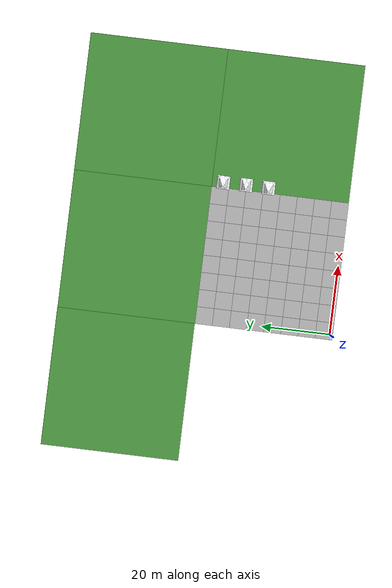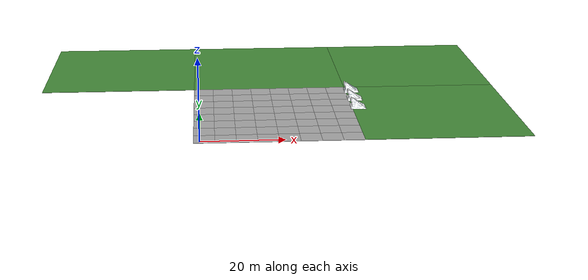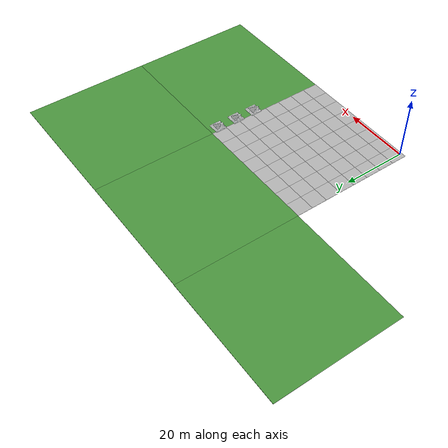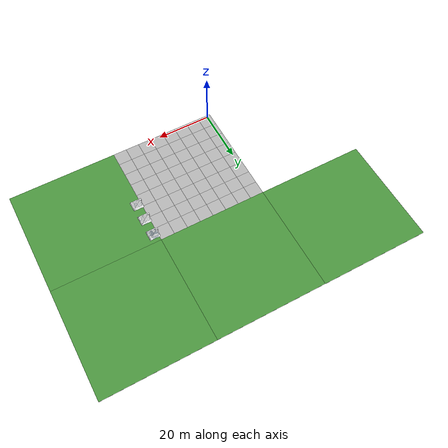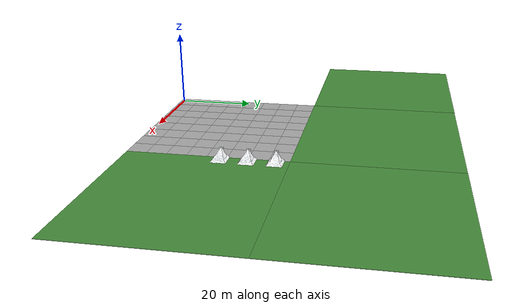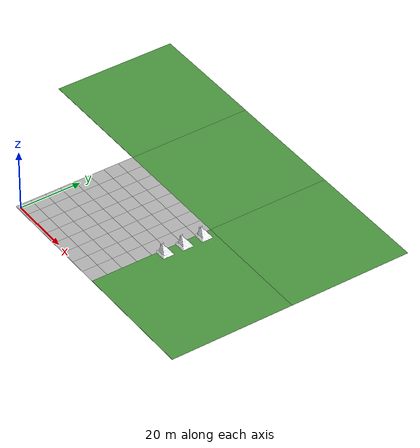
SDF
<sdf version="1.7">
 <world name="default">
  <model name="mud_plane_40x40">
   <model name="mud_plane_20x20">
    <model name="mud_plane">
     <static>1</static>
     <link name="link">
      <collision name="collision"><geometry><box><size>10 10 0.1</size></box></geometry></collision>
      <visual name="visual_1">
       <pose>-2.5 2.5 -0.05 0 -0 0</pose>
       <cast_shadows>0</cast_shadows>
       <geometry><box><size>5 5 0.1</size></box></geometry>
       <material>
        <script>
         <uri>model://mud_plane/materials/scripts</uri>
         <uri>model://mud_plane/materials/textures</uri>
         <name>vrc/mud</name>
        </script>
       </material>
      </visual>
      <visual name="visual_2">
       <pose>2.5 2.5 -0.05 0 -0 0</pose>
       <cast_shadows>0</cast_shadows>
       <geometry><box><size>5 5 0.1</size></box></geometry>
       <material>
        <script>
         <uri>model://mud_plane/materials/scripts</uri>
         <uri>model://mud_plane/materials/textures</uri>
         <name>vrc/mud</name>
        </script>
       </material>
      </visual>
      <visual name="visual_3">
       <pose>2.5 -2.5 -0.05 0 -0 0</pose>
       <cast_shadows>0</cast_shadows>
       <geometry><box><size>5 5 0.1</size></box></geometry>
       <material>
        <script>
         <uri>model://mud_plane/materials/scripts</uri>
         <uri>model://mud_plane/materials/textures</uri>
         <name>vrc/mud</name>
        </script>
       </material>
      </visual>
      <visual name="visual_4">
       <pose>-2.5 -2.5 -0.05 0 -0 0</pose>
       <cast_shadows>0</cast_shadows>
       <geometry><box><size>5 5 0.1</size></box></geometry>
       <material>
        <script>
         <uri>model://mud_plane/materials/scripts</uri>
         <uri>model://mud_plane/materials/textures</uri>
         <name>vrc/mud</name>
        </script>
       </material>
      </visual>
     </link>
     <pose>-4.99986 -4.99991 0 0 -0 0</pose>
    </model>
    <model name="mud_plane_0">
     <static>1</static>
     <link name="link">
      <collision name="collision"><geometry><box><size>10 10 0.1</size></box></geometry></collision>
      <visual name="visual_1">
       <pose>-2.5 2.5 -0.05 0 -0 0</pose>
       <cast_shadows>0</cast_shadows>
       <geometry><box><size>5 5 0.1</size></box></geometry>
       <material>
        <script>
         <uri>model://mud_plane/materials/scripts</uri>
         <uri>model://mud_plane/materials/textures</uri>
         <name>vrc/mud</name>
        </script>
       </material>
      </visual>
      <visual name="visual_2">
       <pose>2.5 2.5 -0.05 0 -0 0</pose>
       <cast_shadows>0</cast_shadows>
       <geometry><box><size>5 5 0.1</size></box></geometry>
       <material>
        <script>
         <uri>model://mud_plane/materials/scripts</uri>
         <uri>model://mud_plane/materials/textures</uri>
         <name>vrc/mud</name>
        </script>
       </material>
      </visual>
      <visual name="visual_3">
       <pose>2.5 -2.5 -0.05 0 -0 0</pose>
       <cast_shadows>0</cast_shadows>
       <geometry><box><size>5 5 0.1</size></box></geometry>
       <material>
        <script>
         <uri>model://mud_plane/materials/scripts</uri>
         <uri>model://mud_plane/materials/textures</uri>
         <name>vrc/mud</name>
        </script>
       </material>
      </visual>
      <visual name="visual_4">
       <pose>-2.5 -2.5 -0.05 0 -0 0</pose>
       <cast_shadows>0</cast_shadows>
       <geometry><box><size>5 5 0.1</size></box></geometry>
       <material>
        <script>
         <uri>model://mud_plane/materials/scripts</uri>
         <uri>model://mud_plane/materials/textures</uri>
         <name>vrc/mud</name>
        </script>
       </material>
      </visual>
     </link>
     <pose>-4.99946 4.99954 0 0 -0 0</pose>
    </model>
    <model name="mud_plane_1">
     <static>1</static>
     <link name="link">
      <collision name="collision"><geometry><box><size>10 10 0.1</size></box></geometry></collision>
      <visual name="visual_1">
       <pose>-2.5 2.5 -0.05 0 -0 0</pose>
       <cast_shadows>0</cast_shadows>
       <geometry><box><size>5 5 0.1</size></box></geometry>
       <material>
        <script>
         <uri>model://mud_plane/materials/scripts</uri>
         <uri>model://mud_plane/materials/textures</uri>
         <name>vrc/mud</name>
        </script>
       </material>
      </visual>
      <visual name="visual_2">
       <pose>2.5 2.5 -0.05 0 -0 0</pose>
       <cast_shadows>0</cast_shadows>
       <geometry><box><size>5 5 0.1</size></box></geometry>
       <material>
        <script>
         <uri>model://mud_plane/materials/scripts</uri>
         <uri>model://mud_plane/materials/textures</uri>
         <name>vrc/mud</name>
        </script>
       </material>
      </visual>
      <visual name="visual_3">
       <pose>2.5 -2.5 -0.05 0 -0 0</pose>
       <cast_shadows>0</cast_shadows>
       <geometry><box><size>5 5 0.1</size></box></geometry>
       <material>
        <script>
         <uri>model://mud_plane/materials/scripts</uri>
         <uri>model://mud_plane/materials/textures</uri>
         <name>vrc/mud</name>
        </script>
       </material>
      </visual>
      <visual name="visual_4">
       <pose>-2.5 -2.5 -0.05 0 -0 0</pose>
       <cast_shadows>0</cast_shadows>
       <geometry><box><size>5 5 0.1</size></box></geometry>
       <material>
        <script>
         <uri>model://mud_plane/materials/scripts</uri>
         <uri>model://mud_plane/materials/textures</uri>
         <name>vrc/mud</name>
        </script>
       </material>
      </visual>
     </link>
     <pose>4.99964 -4.99949 0 0 -0 0</pose>
    </model>
    <model name="mud_plane_2">
     <static>1</static>
     <link name="link">
      <collision name="collision"><geometry><box><size>10 10 0.1</size></box></geometry></collision>
      <visual name="visual_1">
       <pose>-2.5 2.5 -0.05 0 -0 0</pose>
       <cast_shadows>0</cast_shadows>
       <geometry><box><size>5 5 0.1</size></box></geometry>
       <material>
        <script>
         <uri>model://mud_plane/materials/scripts</uri>
         <uri>model://mud_plane/materials/textures</uri>
         <name>vrc/mud</name>
        </script>
       </material>
      </visual>
      <visual name="visual_2">
       <pose>2.5 2.5 -0.05 0 -0 0</pose>
       <cast_shadows>0</cast_shadows>
       <geometry><box><size>5 5 0.1</size></box></geometry>
       <material>
        <script>
         <uri>model://mud_plane/materials/scripts</uri>
         <uri>model://mud_plane/materials/textures</uri>
         <name>vrc/mud</name>
        </script>
       </material>
      </visual>
      <visual name="visual_3">
       <pose>2.5 -2.5 -0.05 0 -0 0</pose>
       <cast_shadows>0</cast_shadows>
       <geometry><box><size>5 5 0.1</size></box></geometry>
       <material>
        <script>
         <uri>model://mud_plane/materials/scripts</uri>
         <uri>model://mud_plane/materials/textures</uri>
         <name>vrc/mud</name>
        </script>
       </material>
      </visual>
      <visual name="visual_4">
       <pose>-2.5 -2.5 -0.05 0 -0 0</pose>
       <cast_shadows>0</cast_shadows>
       <geometry><box><size>5 5 0.1</size></box></geometry>
       <material>
        <script>
         <uri>model://mud_plane/materials/scripts</uri>
         <uri>model://mud_plane/materials/textures</uri>
         <name>vrc/mud</name>
        </script>
       </material>
      </visual>
     </link>
     <pose>4.99967 4.99986 0 0 -0 0</pose>
    </model>
    <static>0</static>
    <pose>-9.99895 9.99843 0 0 -0 0</pose>
   </model>
   <model name="mud_plane_20x20_0">
    <model name="mud_plane">
     <static>1</static>
     <link name="link">
      <collision name="collision"><geometry><box><size>10 10 0.1</size></box></geometry></collision>
      <visual name="visual_1">
       <pose>-2.5 2.5 -0.05 0 -0 0</pose>
       <cast_shadows>0</cast_shadows>
       <geometry><box><size>5 5 0.1</size></box></geometry>
       <material>
        <script>
         <uri>model://mud_plane/materials/scripts</uri>
         <uri>model://mud_plane/materials/textures</uri>
         <name>vrc/mud</name>
        </script>
       </material>
      </visual>
      <visual name="visual_2">
       <pose>2.5 2.5 -0.05 0 -0 0</pose>
       <cast_shadows>0</cast_shadows>
       <geometry><box><size>5 5 0.1</size></box></geometry>
       <material>
        <script>
         <uri>model://mud_plane/materials/scripts</uri>
         <uri>model://mud_plane/materials/textures</uri>
         <name>vrc/mud</name>
        </script>
       </material>
      </visual>
      <visual name="visual_3">
       <pose>2.5 -2.5 -0.05 0 -0 0</pose>
       <cast_shadows>0</cast_shadows>
       <geometry><box><size>5 5 0.1</size></box></geometry>
       <material>
        <script>
         <uri>model://mud_plane/materials/scripts</uri>
         <uri>model://mud_plane/materials/textures</uri>
         <name>vrc/mud</name>
        </script>
       </material>
      </visual>
      <visual name="visual_4">
       <pose>-2.5 -2.5 -0.05 0 -0 0</pose>
       <cast_shadows>0</cast_shadows>
       <geometry><box><size>5 5 0.1</size></box></geometry>
       <material>
        <script>
         <uri>model://mud_plane/materials/scripts</uri>
         <uri>model://mud_plane/materials/textures</uri>
         <name>vrc/mud</name>
        </script>
       </material>
      </visual>
     </link>
     <pose>-4.99986 -4.99991 0 0 -0 0</pose>
    </model>
    <model name="mud_plane_0">
     <static>1</static>
     <link name="link">
      <collision name="collision"><geometry><box><size>10 10 0.1</size></box></geometry></collision>
      <visual name="visual_1">
       <pose>-2.5 2.5 -0.05 0 -0 0</pose>
       <cast_shadows>0</cast_shadows>
       <geometry><box><size>5 5 0.1</size></box></geometry>
       <material>
        <script>
         <uri>model://mud_plane/materials/scripts</uri>
         <uri>model://mud_plane/materials/textures</uri>
         <name>vrc/mud</name>
        </script>
       </material>
      </visual>
      <visual name="visual_2">
       <pose>2.5 2.5 -0.05 0 -0 0</pose>
       <cast_shadows>0</cast_shadows>
       <geometry><box><size>5 5 0.1</size></box></geometry>
       <material>
        <script>
         <uri>model://mud_plane/materials/scripts</uri>
         <uri>model://mud_plane/materials/textures</uri>
         <name>vrc/mud</name>
        </script>
       </material>
      </visual>
      <visual name="visual_3">
       <pose>2.5 -2.5 -0.05 0 -0 0</pose>
       <cast_shadows>0</cast_shadows>
       <geometry><box><size>5 5 0.1</size></box></geometry>
       <material>
        <script>
         <uri>model://mud_plane/materials/scripts</uri>
         <uri>model://mud_plane/materials/textures</uri>
         <name>vrc/mud</name>
        </script>
       </material>
      </visual>
      <visual name="visual_4">
       <pose>-2.5 -2.5 -0.05 0 -0 0</pose>
       <cast_shadows>0</cast_shadows>
       <geometry><box><size>5 5 0.1</size></box></geometry>
       <material>
        <script>
         <uri>model://mud_plane/materials/scripts</uri>
         <uri>model://mud_plane/materials/textures</uri>
         <name>vrc/mud</name>
        </script>
       </material>
      </visual>
     </link>
     <pose>-4.99946 4.99954 0 0 -0 0</pose>
    </model>
    <model name="mud_plane_1">
     <static>1</static>
     <link name="link">
      <collision name="collision"><geometry><box><size>10 10 0.1</size></box></geometry></collision>
      <visual name="visual_1">
       <pose>-2.5 2.5 -0.05 0 -0 0</pose>
       <cast_shadows>0</cast_shadows>
       <geometry><box><size>5 5 0.1</size></box></geometry>
       <material>
        <script>
         <uri>model://mud_plane/materials/scripts</uri>
         <uri>model://mud_plane/materials/textures</uri>
         <name>vrc/mud</name>
        </script>
       </material>
      </visual>
      <visual name="visual_2">
       <pose>2.5 2.5 -0.05 0 -0 0</pose>
       <cast_shadows>0</cast_shadows>
       <geometry><box><size>5 5 0.1</size></box></geometry>
       <material>
        <script>
         <uri>model://mud_plane/materials/scripts</uri>
         <uri>model://mud_plane/materials/textures</uri>
         <name>vrc/mud</name>
        </script>
       </material>
      </visual>
      <visual name="visual_3">
       <pose>2.5 -2.5 -0.05 0 -0 0</pose>
       <cast_shadows>0</cast_shadows>
       <geometry><box><size>5 5 0.1</size></box></geometry>
       <material>
        <script>
         <uri>model://mud_plane/materials/scripts</uri>
         <uri>model://mud_plane/materials/textures</uri>
         <name>vrc/mud</name>
        </script>
       </material>
      </visual>
      <visual name="visual_4">
       <pose>-2.5 -2.5 -0.05 0 -0 0</pose>
       <cast_shadows>0</cast_shadows>
       <geometry><box><size>5 5 0.1</size></box></geometry>
       <material>
        <script>
         <uri>model://mud_plane/materials/scripts</uri>
         <uri>model://mud_plane/materials/textures</uri>
         <name>vrc/mud</name>
        </script>
       </material>
      </visual>
     </link>
     <pose>4.99964 -4.99949 0 0 -0 0</pose>
    </model>
    <model name="mud_plane_2">
     <static>1</static>
     <link name="link">
      <collision name="collision"><geometry><box><size>10 10 0.1</size></box></geometry></collision>
      <visual name="visual_1">
       <pose>-2.5 2.5 -0.05 0 -0 0</pose>
       <cast_shadows>0</cast_shadows>
       <geometry><box><size>5 5 0.1</size></box></geometry>
       <material>
        <script>
         <uri>model://mud_plane/materials/scripts</uri>
         <uri>model://mud_plane/materials/textures</uri>
         <name>vrc/mud</name>
        </script>
       </material>
      </visual>
      <visual name="visual_2">
       <pose>2.5 2.5 -0.05 0 -0 0</pose>
       <cast_shadows>0</cast_shadows>
       <geometry><box><size>5 5 0.1</size></box></geometry>
       <material>
        <script>
         <uri>model://mud_plane/materials/scripts</uri>
         <uri>model://mud_plane/materials/textures</uri>
         <name>vrc/mud</name>
        </script>
       </material>
      </visual>
      <visual name="visual_3">
       <pose>2.5 -2.5 -0.05 0 -0 0</pose>
       <cast_shadows>0</cast_shadows>
       <geometry><box><size>5 5 0.1</size></box></geometry>
       <material>
        <script>
         <uri>model://mud_plane/materials/scripts</uri>
         <uri>model://mud_plane/materials/textures</uri>
         <name>vrc/mud</name>
        </script>
       </material>
      </visual>
      <visual name="visual_4">
       <pose>-2.5 -2.5 -0.05 0 -0 0</pose>
       <cast_shadows>0</cast_shadows>
       <geometry><box><size>5 5 0.1</size></box></geometry>
       <material>
        <script>
         <uri>model://mud_plane/materials/scripts</uri>
         <uri>model://mud_plane/materials/textures</uri>
         <name>vrc/mud</name>
        </script>
       </material>
      </visual>
     </link>
     <pose>4.99967 4.99986 0 0 -0 0</pose>
    </model>
    <static>0</static>
    <pose>9.99933 9.9997 0 0 -0 0</pose>
   </model>
   <model name="mud_plane_20x20_1">
    <model name="mud_plane">
     <static>1</static>
     <link name="link">
      <collision name="collision"><geometry><box><size>10 10 0.1</size></box></geometry></collision>
      <visual name="visual_1">
       <pose>-2.5 2.5 -0.05 0 -0 0</pose>
       <cast_shadows>0</cast_shadows>
       <geometry><box><size>5 5 0.1</size></box></geometry>
       <material>
        <script>
         <uri>model://mud_plane/materials/scripts</uri>
         <uri>model://mud_plane/materials/textures</uri>
         <name>vrc/mud</name>
        </script>
       </material>
      </visual>
      <visual name="visual_2">
       <pose>2.5 2.5 -0.05 0 -0 0</pose>
       <cast_shadows>0</cast_shadows>
       <geometry><box><size>5 5 0.1</size></box></geometry>
       <material>
        <script>
         <uri>model://mud_plane/materials/scripts</uri>
         <uri>model://mud_plane/materials/textures</uri>
         <name>vrc/mud</name>
        </script>
       </material>
      </visual>
      <visual name="visual_3">
       <pose>2.5 -2.5 -0.05 0 -0 0</pose>
       <cast_shadows>0</cast_shadows>
       <geometry><box><size>5 5 0.1</size></box></geometry>
       <material>
        <script>
         <uri>model://mud_plane/materials/scripts</uri>
         <uri>model://mud_plane/materials/textures</uri>
         <name>vrc/mud</name>
        </script>
       </material>
      </visual>
      <visual name="visual_4">
       <pose>-2.5 -2.5 -0.05 0 -0 0</pose>
       <cast_shadows>0</cast_shadows>
       <geometry><box><size>5 5 0.1</size></box></geometry>
       <material>
        <script>
         <uri>model://mud_plane/materials/scripts</uri>
         <uri>model://mud_plane/materials/textures</uri>
         <name>vrc/mud</name>
        </script>
       </material>
      </visual>
     </link>
     <pose>-4.99986 -4.99991 0 0 -0 0</pose>
    </model>
    <model name="mud_plane_0">
     <static>1</static>
     <link name="link">
      <collision name="collision"><geometry><box><size>10 10 0.1</size></box></geometry></collision>
      <visual name="visual_1">
       <pose>-2.5 2.5 -0.05 0 -0 0</pose>
       <cast_shadows>0</cast_shadows>
       <geometry><box><size>5 5 0.1</size></box></geometry>
       <material>
        <script>
         <uri>model://mud_plane/materials/scripts</uri>
         <uri>model://mud_plane/materials/textures</uri>
         <name>vrc/mud</name>
        </script>
       </material>
      </visual>
      <visual name="visual_2">
       <pose>2.5 2.5 -0.05 0 -0 0</pose>
       <cast_shadows>0</cast_shadows>
       <geometry><box><size>5 5 0.1</size></box></geometry>
       <material>
        <script>
         <uri>model://mud_plane/materials/scripts</uri>
         <uri>model://mud_plane/materials/textures</uri>
         <name>vrc/mud</name>
        </script>
       </material>
      </visual>
      <visual name="visual_3">
       <pose>2.5 -2.5 -0.05 0 -0 0</pose>
       <cast_shadows>0</cast_shadows>
       <geometry><box><size>5 5 0.1</size></box></geometry>
       <material>
        <script>
         <uri>model://mud_plane/materials/scripts</uri>
         <uri>model://mud_plane/materials/textures</uri>
         <name>vrc/mud</name>
        </script>
       </material>
      </visual>
      <visual name="visual_4">
       <pose>-2.5 -2.5 -0.05 0 -0 0</pose>
       <cast_shadows>0</cast_shadows>
       <geometry><box><size>5 5 0.1</size></box></geometry>
       <material>
        <script>
         <uri>model://mud_plane/materials/scripts</uri>
         <uri>model://mud_plane/materials/textures</uri>
         <name>vrc/mud</name>
        </script>
       </material>
      </visual>
     </link>
     <pose>-4.99946 4.99954 0 0 -0 0</pose>
    </model>
    <model name="mud_plane_1">
     <static>1</static>
     <link name="link">
      <collision name="collision"><geometry><box><size>10 10 0.1</size></box></geometry></collision>
      <visual name="visual_1">
       <pose>-2.5 2.5 -0.05 0 -0 0</pose>
       <cast_shadows>0</cast_shadows>
       <geometry><box><size>5 5 0.1</size></box></geometry>
       <material>
        <script>
         <uri>model://mud_plane/materials/scripts</uri>
         <uri>model://mud_plane/materials/textures</uri>
         <name>vrc/mud</name>
        </script>
       </material>
      </visual>
      <visual name="visual_2">
       <pose>2.5 2.5 -0.05 0 -0 0</pose>
       <cast_shadows>0</cast_shadows>
       <geometry><box><size>5 5 0.1</size></box></geometry>
       <material>
        <script>
         <uri>model://mud_plane/materials/scripts</uri>
         <uri>model://mud_plane/materials/textures</uri>
         <name>vrc/mud</name>
        </script>
       </material>
      </visual>
      <visual name="visual_3">
       <pose>2.5 -2.5 -0.05 0 -0 0</pose>
       <cast_shadows>0</cast_shadows>
       <geometry><box><size>5 5 0.1</size></box></geometry>
       <material>
        <script>
         <uri>model://mud_plane/materials/scripts</uri>
         <uri>model://mud_plane/materials/textures</uri>
         <name>vrc/mud</name>
        </script>
       </material>
      </visual>
      <visual name="visual_4">
       <pose>-2.5 -2.5 -0.05 0 -0 0</pose>
       <cast_shadows>0</cast_shadows>
       <geometry><box><size>5 5 0.1</size></box></geometry>
       <material>
        <script>
         <uri>model://mud_plane/materials/scripts</uri>
         <uri>model://mud_plane/materials/textures</uri>
         <name>vrc/mud</name>
        </script>
       </material>
      </visual>
     </link>
     <pose>4.99964 -4.99949 0 0 -0 0</pose>
    </model>
    <model name="mud_plane_2">
     <static>1</static>
     <link name="link">
      <collision name="collision"><geometry><box><size>10 10 0.1</size></box></geometry></collision>
      <visual name="visual_1">
       <pose>-2.5 2.5 -0.05 0 -0 0</pose>
       <cast_shadows>0</cast_shadows>
       <geometry><box><size>5 5 0.1</size></box></geometry>
       <material>
        <script>
         <uri>model://mud_plane/materials/scripts</uri>
         <uri>model://mud_plane/materials/textures</uri>
         <name>vrc/mud</name>
        </script>
       </material>
      </visual>
      <visual name="visual_2">
       <pose>2.5 2.5 -0.05 0 -0 0</pose>
       <cast_shadows>0</cast_shadows>
       <geometry><box><size>5 5 0.1</size></box></geometry>
       <material>
        <script>
         <uri>model://mud_plane/materials/scripts</uri>
         <uri>model://mud_plane/materials/textures</uri>
         <name>vrc/mud</name>
        </script>
       </material>
      </visual>
      <visual name="visual_3">
       <pose>2.5 -2.5 -0.05 0 -0 0</pose>
       <cast_shadows>0</cast_shadows>
       <geometry><box><size>5 5 0.1</size></box></geometry>
       <material>
        <script>
         <uri>model://mud_plane/materials/scripts</uri>
         <uri>model://mud_plane/materials/textures</uri>
         <name>vrc/mud</name>
        </script>
       </material>
      </visual>
      <visual name="visual_4">
       <pose>-2.5 -2.5 -0.05 0 -0 0</pose>
       <cast_shadows>0</cast_shadows>
       <geometry><box><size>5 5 0.1</size></box></geometry>
       <material>
        <script>
         <uri>model://mud_plane/materials/scripts</uri>
         <uri>model://mud_plane/materials/textures</uri>
         <name>vrc/mud</name>
        </script>
       </material>
      </visual>
     </link>
     <pose>4.99967 4.99986 0 0 -0 0</pose>
    </model>
    <static>0</static>
    <pose>9.9993 -9.99877 0 0 -0 0</pose>
   </model>
   <model name="mud_plane_20x20_2">
    <model name="mud_plane">
     <static>1</static>
     <link name="link">
      <collision name="collision"><geometry><box><size>10 10 0.1</size></box></geometry></collision>
      <visual name="visual_1">
       <pose>-2.5 2.5 -0.05 0 -0 0</pose>
       <cast_shadows>0</cast_shadows>
       <geometry><box><size>5 5 0.1</size></box></geometry>
       <material>
        <script>
         <uri>model://mud_plane/materials/scripts</uri>
         <uri>model://mud_plane/materials/textures</uri>
         <name>vrc/mud</name>
        </script>
       </material>
      </visual>
      <visual name="visual_2">
       <pose>2.5 2.5 -0.05 0 -0 0</pose>
       <cast_shadows>0</cast_shadows>
       <geometry><box><size>5 5 0.1</size></box></geometry>
       <material>
        <script>
         <uri>model://mud_plane/materials/scripts</uri>
         <uri>model://mud_plane/materials/textures</uri>
         <name>vrc/mud</name>
        </script>
       </material>
      </visual>
      <visual name="visual_3">
       <pose>2.5 -2.5 -0.05 0 -0 0</pose>
       <cast_shadows>0</cast_shadows>
       <geometry><box><size>5 5 0.1</size></box></geometry>
       <material>
        <script>
         <uri>model://mud_plane/materials/scripts</uri>
         <uri>model://mud_plane/materials/textures</uri>
         <name>vrc/mud</name>
        </script>
       </material>
      </visual>
      <visual name="visual_4">
       <pose>-2.5 -2.5 -0.05 0 -0 0</pose>
       <cast_shadows>0</cast_shadows>
       <geometry><box><size>5 5 0.1</size></box></geometry>
       <material>
        <script>
         <uri>model://mud_plane/materials/scripts</uri>
         <uri>model://mud_plane/materials/textures</uri>
         <name>vrc/mud</name>
        </script>
       </material>
      </visual>
     </link>
     <pose>-4.99986 -4.99991 0 0 -0 0</pose>
    </model>
    <model name="mud_plane_0">
     <static>1</static>
     <link name="link">
      <collision name="collision"><geometry><box><size>10 10 0.1</size></box></geometry></collision>
      <visual name="visual_1">
       <pose>-2.5 2.5 -0.05 0 -0 0</pose>
       <cast_shadows>0</cast_shadows>
       <geometry><box><size>5 5 0.1</size></box></geometry>
       <material>
        <script>
         <uri>model://mud_plane/materials/scripts</uri>
         <uri>model://mud_plane/materials/textures</uri>
         <name>vrc/mud</name>
        </script>
       </material>
      </visual>
      <visual name="visual_2">
       <pose>2.5 2.5 -0.05 0 -0 0</pose>
       <cast_shadows>0</cast_shadows>
       <geometry><box><size>5 5 0.1</size></box></geometry>
       <material>
        <script>
         <uri>model://mud_plane/materials/scripts</uri>
         <uri>model://mud_plane/materials/textures</uri>
         <name>vrc/mud</name>
        </script>
       </material>
      </visual>
      <visual name="visual_3">
       <pose>2.5 -2.5 -0.05 0 -0 0</pose>
       <cast_shadows>0</cast_shadows>
       <geometry><box><size>5 5 0.1</size></box></geometry>
       <material>
        <script>
         <uri>model://mud_plane/materials/scripts</uri>
         <uri>model://mud_plane/materials/textures</uri>
         <name>vrc/mud</name>
        </script>
       </material>
      </visual>
      <visual name="visual_4">
       <pose>-2.5 -2.5 -0.05 0 -0 0</pose>
       <cast_shadows>0</cast_shadows>
       <geometry><box><size>5 5 0.1</size></box></geometry>
       <material>
        <script>
         <uri>model://mud_plane/materials/scripts</uri>
         <uri>model://mud_plane/materials/textures</uri>
         <name>vrc/mud</name>
        </script>
       </material>
      </visual>
     </link>
     <pose>-4.99946 4.99954 0 0 -0 0</pose>
    </model>
    <model name="mud_plane_1">
     <static>1</static>
     <link name="link">
      <collision name="collision"><geometry><box><size>10 10 0.1</size></box></geometry></collision>
      <visual name="visual_1">
       <pose>-2.5 2.5 -0.05 0 -0 0</pose>
       <cast_shadows>0</cast_shadows>
       <geometry><box><size>5 5 0.1</size></box></geometry>
       <material>
        <script>
         <uri>model://mud_plane/materials/scripts</uri>
         <uri>model://mud_plane/materials/textures</uri>
         <name>vrc/mud</name>
        </script>
       </material>
      </visual>
      <visual name="visual_2">
       <pose>2.5 2.5 -0.05 0 -0 0</pose>
       <cast_shadows>0</cast_shadows>
       <geometry><box><size>5 5 0.1</size></box></geometry>
       <material>
        <script>
         <uri>model://mud_plane/materials/scripts</uri>
         <uri>model://mud_plane/materials/textures</uri>
         <name>vrc/mud</name>
        </script>
       </material>
      </visual>
      <visual name="visual_3">
       <pose>2.5 -2.5 -0.05 0 -0 0</pose>
       <cast_shadows>0</cast_shadows>
       <geometry><box><size>5 5 0.1</size></box></geometry>
       <material>
        <script>
         <uri>model://mud_plane/materials/scripts</uri>
         <uri>model://mud_plane/materials/textures</uri>
         <name>vrc/mud</name>
        </script>
       </material>
      </visual>
      <visual name="visual_4">
       <pose>-2.5 -2.5 -0.05 0 -0 0</pose>
       <cast_shadows>0</cast_shadows>
       <geometry><box><size>5 5 0.1</size></box></geometry>
       <material>
        <script>
         <uri>model://mud_plane/materials/scripts</uri>
         <uri>model://mud_plane/materials/textures</uri>
         <name>vrc/mud</name>
        </script>
       </material>
      </visual>
     </link>
     <pose>4.99964 -4.99949 0 0 -0 0</pose>
    </model>
    <model name="mud_plane_2">
     <static>1</static>
     <link name="link">
      <collision name="collision"><geometry><box><size>10 10 0.1</size></box></geometry></collision>
      <visual name="visual_1">
       <pose>-2.5 2.5 -0.05 0 -0 0</pose>
       <cast_shadows>0</cast_shadows>
       <geometry><box><size>5 5 0.1</size></box></geometry>
       <material>
        <script>
         <uri>model://mud_plane/materials/scripts</uri>
         <uri>model://mud_plane/materials/textures</uri>
         <name>vrc/mud</name>
        </script>
       </material>
      </visual>
      <visual name="visual_2">
       <pose>2.5 2.5 -0.05 0 -0 0</pose>
       <cast_shadows>0</cast_shadows>
       <geometry><box><size>5 5 0.1</size></box></geometry>
       <material>
        <script>
         <uri>model://mud_plane/materials/scripts</uri>
         <uri>model://mud_plane/materials/textures</uri>
         <name>vrc/mud</name>
        </script>
       </material>
      </visual>
      <visual name="visual_3">
       <pose>2.5 -2.5 -0.05 0 -0 0</pose>
       <cast_shadows>0</cast_shadows>
       <geometry><box><size>5 5 0.1</size></box></geometry>
       <material>
        <script>
         <uri>model://mud_plane/materials/scripts</uri>
         <uri>model://mud_plane/materials/textures</uri>
         <name>vrc/mud</name>
        </script>
       </material>
      </visual>
      <visual name="visual_4">
       <pose>-2.5 -2.5 -0.05 0 -0 0</pose>
       <cast_shadows>0</cast_shadows>
       <geometry><box><size>5 5 0.1</size></box></geometry>
       <material>
        <script>
         <uri>model://mud_plane/materials/scripts</uri>
         <uri>model://mud_plane/materials/textures</uri>
         <name>vrc/mud</name>
        </script>
       </material>
      </visual>
     </link>
     <pose>4.99967 4.99986 0 0 -0 0</pose>
    </model>
    <static>0</static>
    <pose>-9.99969 -9.99935 0 0 -0 0</pose>
   </model>
   <static>0</static>
   <pose>18.5425 19.1901 0 0 -0 0</pose>
  </model>
  <model name="grass_plane_40x40_1">
   <pose>-21.4411 59.238 -0.05 0 -0 0</pose>
   <static>1</static>
   <link name="link">
    <collision name="collision"><geometry><box><size>40 40 0.1</size></box></geometry></collision>
    <visual name="grass">
     <cast_shadows>0</cast_shadows>
     <geometry><box><size>40 40 0.1</size></box></geometry>
     <material>
      <script><uri>file://media/materials/scripts/gazebo.material</uri><name>Gazebo/Grass</name></script>
     </material>
    </visual>
   </link>
  </model>
  <model name="grass_plane_40x40_2">
   <pose>18.5473 59.1879 -0.05 0 -0 0</pose>
   <static>1</static>
   <link name="link">
    <collision name="collision"><geometry><box><size>40 40 0.1</size></box></geometry></collision>
    <visual name="grass">
     <cast_shadows>0</cast_shadows>
     <geometry><box><size>40 40 0.1</size></box></geometry>
     <material>
      <script><uri>file://media/materials/scripts/gazebo.material</uri><name>Gazebo/Grass</name></script>
     </material>
    </visual>
   </link>
  </model>
  <model name="grass_plane_40x40_3">
   <pose>58.5397 59.2084 -0.05 0 -0 0</pose>
   <static>1</static>
   <link name="link">
    <collision name="collision"><geometry><box><size>40 40 0.1</size></box></geometry></collision>
    <visual name="grass">
     <cast_shadows>0</cast_shadows>
     <geometry><box><size>40 40 0.1</size></box></geometry>
     <material>
      <script><uri>file://media/materials/scripts/gazebo.material</uri><name>Gazebo/Grass</name></script>
     </material>
    </visual>
   </link>
  </model>
  <model name="grass_plane_40x40_4">
   <pose>58.5371 19.2128 -0.05 0 -0 0</pose>
   <static>1</static>
   <link name="link">
    <collision name="collision"><geometry><box><size>40 40 0.1</size></box></geometry></collision>
    <visual name="grass">
     <cast_shadows>0</cast_shadows>
     <geometry><box><size>40 40 0.1</size></box></geometry>
     <material>
      <script><uri>file://media/materials/scripts/gazebo.material</uri><name>Gazebo/Grass</name></script>
     </material>
    </visual>
   </link>
  </model>
  <model name="bumper_clone">
   <static>1</static>
   <link name="link">
    <visual name="visual">
     <geometry><mesh><uri>model://bumper/meshes/model.dae</uri><scale>50 50 50</scale></mesh></geometry>
    </visual>
   </link>
   <pose>38.1544 24.683 0 0 0 -1.57</pose>
  </model>
  <model name="bumper_clone_0">
   <static>1</static>
   <link name="link">
    <visual name="visual">
     <geometry><mesh><uri>model://bumper/meshes/model.dae</uri><scale>50 50 50</scale></mesh></geometry>
    </visual>
   </link>
   <pose>38.2205 31.218 0 0 0 -1.57</pose>
  </model>
  <model name="bumper_clone_1">
   <static>1</static>
   <link name="link">
    <visual name="visual">
     <geometry><mesh><uri>model://bumper/meshes/model.dae</uri><scale>50 50 50</scale></mesh></geometry>
    </visual>
   </link>
   <pose>38.1827 37.8653 0 0 0 -1.57</pose>
  </model>
 </world>
</sdf>
